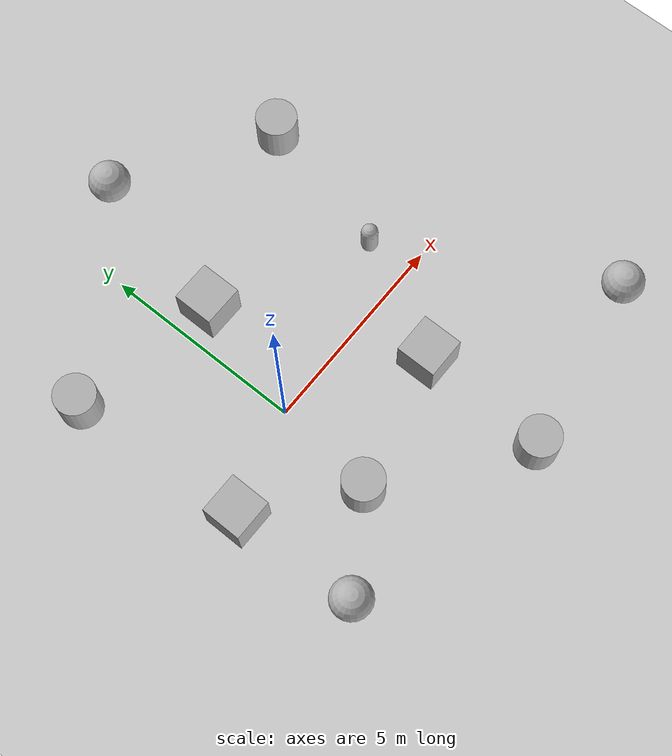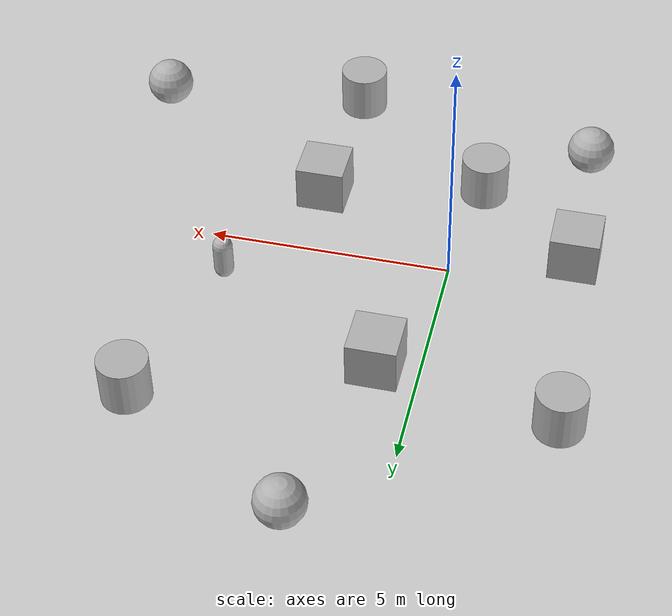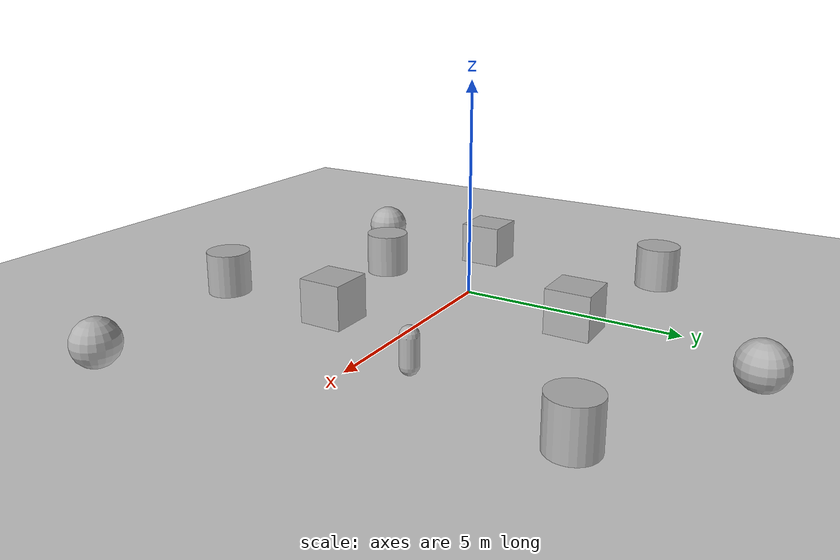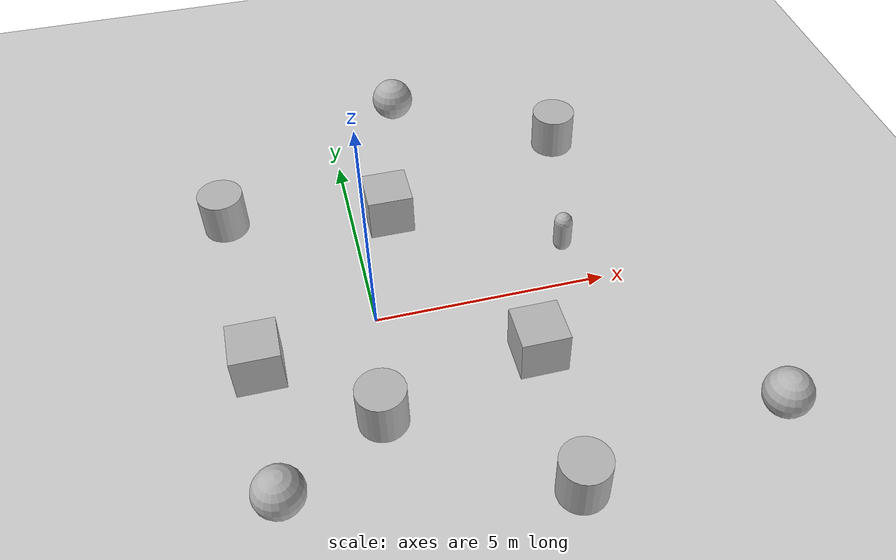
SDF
<sdf version='1.9'>
  <world name='empty'>
    <physics name='1ms' type='ignored'>
      <max_step_size>0.001</max_step_size>
      <real_time_factor>1</real_time_factor>
      <real_time_update_rate>1000</real_time_update_rate>
    </physics>
    <plugin name='gz::sim::systems::Physics' filename='ignition-gazebo-physics-system'/>
    <plugin name='gz::sim::systems::UserCommands' filename='ignition-gazebo-user-commands-system'/>
    <plugin name='gz::sim::systems::SceneBroadcaster' filename='ignition-gazebo-scene-broadcaster-system'/>
    <plugin name='gz::sim::systems::Contact' filename='ignition-gazebo-contact-system'/>
    <plugin name='gz::sim::systems::Sensors' filename='ignition-gazebo-sensors-system'>
      <render_engine>ogre2</render_engine>
    </plugin>
    <gravity>0 0 -9.8</gravity>
    <magnetic_field>6e-06 2.3e-05 -4.2e-05</magnetic_field>
    <atmosphere type='adiabatic'/>
    <scene>
      <ambient>0.4 0.4 0.4 1</ambient>
      <background>0.7 0.7 0.7 1</background>
      <shadows>true</shadows>
    </scene>
    <model name='ground_plane'>
      <static>true</static>
      <link name='link'>
        <collision name="collision">
          <geometry>
            <plane>
              <normal>0 0 1</normal>
              <size>100 100</size>
            </plane>
          </geometry>
          <surface>
            <friction>
              <ode>
                <mu>50</mu>
              </ode>
            </friction>
          </surface>
        </collision>
        <visual name='visual'>
          <geometry>
            <plane>
              <normal>0 0 1</normal>
              <size>100 100</size>
            </plane>
          </geometry>
          <material>
            <ambient>0.8 0.8 0.8 1</ambient>
            <diffuse>0.8 0.8 0.8 1</diffuse>
            <specular>0.8 0.8 0.8 1</specular>
          </material>
        </visual>
        <pose>0 0 0 0 -0 0</pose>
        <inertial>
          <pose>0 0 0 0 -0 0</pose>
          <mass>1</mass>
          <inertia>
            <ixx>1</ixx>
            <ixy>0</ixy>
            <ixz>0</ixz>
            <iyy>1</iyy>
            <iyz>0</iyz>
            <izz>1</izz>
          </inertia>
        </inertial>
        <enable_wind>false</enable_wind>
      </link>
      <pose>0 0 0 0 -0 0</pose>
      <self_collide>false</self_collide>
    </model>
    <model name='box'>
      <pose>0.845524 2.9587 0.5 0 0 -0</pose>
      <link name='box_link'>
        <inertial>
          <inertia>
            <ixx>0.16666</ixx>
            <ixy>0</ixy>
            <ixz>0</ixz>
            <iyy>0.16666</iyy>
            <iyz>0</iyz>
            <izz>0.16666</izz>
          </inertia>
          <mass>1</mass>
          <pose>0 0 0 0 -0 0</pose>
        </inertial>
        <collision name='box_collision'>
          <geometry>
            <box>
              <size>1 1 1</size>
            </box>
          </geometry>
          <surface>
            <friction>
              <ode/>
            </friction>
            <bounce/>
            <contact/>
          </surface>
        </collision>
        <visual name='box_visual'>
          <geometry>
            <box>
              <size>1 1 1</size>
            </box>
          </geometry>
          <material>
            <ambient>0.3 0.3 0.3 1</ambient>
            <diffuse>0.7 0.7 0.7 1</diffuse>
            <specular>1 1 1 1</specular>
          </material>
        </visual>
        <pose>0 0 0 0 -0 0</pose>
        <enable_wind>false</enable_wind>
      </link>
      <static>false</static>
      <self_collide>false</self_collide>
    </model>
    <model name='sphere'>
      <pose>-2.39579 -3.8611 0.5 0 -0 0</pose>
      <link name='sphere_link'>
        <inertial>
          <inertia>
            <ixx>0.10000000000000001</ixx>
            <ixy>0</ixy>
            <ixz>0</ixz>
            <iyy>0.10000000000000001</iyy>
            <iyz>0</iyz>
            <izz>0.10000000000000001</izz>
          </inertia>
          <mass>1</mass>
          <pose>0 0 0 0 -0 0</pose>
        </inertial>
        <collision name='sphere_collision'>
          <geometry>
            <sphere>
              <radius>0.5</radius>
            </sphere>
          </geometry>
          <surface>
            <friction>
              <ode/>
            </friction>
            <bounce/>
            <contact/>
          </surface>
        </collision>
        <visual name='sphere_visual'>
          <geometry>
            <sphere>
              <radius>0.5</radius>
            </sphere>
          </geometry>
          <material>
            <ambient>0.3 0.3 0.3 1</ambient>
            <diffuse>0.7 0.7 0.7 1</diffuse>
            <specular>1 1 1 1</specular>
          </material>
        </visual>
        <pose>0 0 0 0 -0 0</pose>
        <enable_wind>false</enable_wind>
      </link>
      <static>false</static>
      <self_collide>false</self_collide>
    </model>
    <model name='box_0'>
      <pose>-2.48527 -0.748911 0.5 -0 0 -0</pose>
      <link name='box_link'>
        <inertial>
          <inertia>
            <ixx>0.16666</ixx>
            <ixy>0</ixy>
            <ixz>0</ixz>
            <iyy>0.16666</iyy>
            <iyz>0</iyz>
            <izz>0.16666</izz>
          </inertia>
          <mass>1</mass>
          <pose>0 0 0 0 -0 0</pose>
        </inertial>
        <collision name='box_collision'>
          <geometry>
            <box>
              <size>1 1 1</size>
            </box>
          </geometry>
          <surface>
            <friction>
              <ode/>
            </friction>
            <bounce/>
            <contact/>
          </surface>
        </collision>
        <visual name='box_visual'>
          <geometry>
            <box>
              <size>1 1 1</size>
            </box>
          </geometry>
          <material>
            <ambient>0.3 0.3 0.3 1</ambient>
            <diffuse>0.7 0.7 0.7 1</diffuse>
            <specular>1 1 1 1</specular>
            <emissive>0 0 1 1</emissive>
          </material>
        </visual>
        <pose>0 0 0 0 -0 0</pose>
        <enable_wind>false</enable_wind>
      </link>
      <static>false</static>
      <self_collide>false</self_collide>
    </model>
    <model name='sphere_0'>
      <pose>7.21601 -4.16 0.5 0 -0 0</pose>
      <link name='sphere_link'>
        <inertial>
          <inertia>
            <ixx>0.10000000000000001</ixx>
            <ixy>0</ixy>
            <ixz>0</ixz>
            <iyy>0.10000000000000001</iyy>
            <iyz>0</iyz>
            <izz>0.10000000000000001</izz>
          </inertia>
          <mass>1</mass>
          <pose>0 0 0 0 -0 0</pose>
        </inertial>
        <collision name='sphere_collision'>
          <geometry>
            <sphere>
              <radius>0.5</radius>
            </sphere>
          </geometry>
          <surface>
            <friction>
              <ode/>
            </friction>
            <bounce/>
            <contact/>
          </surface>
        </collision>
        <visual name='sphere_visual'>
          <geometry>
            <sphere>
              <radius>0.5</radius>
            </sphere>
          </geometry>
          <material>
            <ambient>0.3 0.3 0.3 1</ambient>
            <diffuse>0.7 0.7 0.7 1</diffuse>
            <specular>1 1 1 1</specular>
            <emissive>0 0.8 0 1</emissive>
           </material>
        </visual>
        <pose>0 0 0 0 -0 0</pose>
        <enable_wind>false</enable_wind>
      </link>
      <static>false</static>
      <self_collide>false</self_collide>
    </model>
    <model name='cylinder'>
      <pose>2.87591 -4.90116 0.499999 0 -0 0</pose>
      <link name='cylinder_link'>
        <inertial>
          <inertia>
            <ixx>0.14580000000000001</ixx>
            <ixy>0</ixy>
            <ixz>0</ixz>
            <iyy>0.14580000000000001</iyy>
            <iyz>0</iyz>
            <izz>0.125</izz>
          </inertia>
          <mass>1</mass>
          <pose>0 0 0 0 -0 0</pose>
        </inertial>
        <collision name='cylinder_collision'>
          <geometry>
            <cylinder>
              <radius>0.5</radius>
              <length>1</length>
            </cylinder>
          </geometry>
          <surface>
            <friction>
              <ode/>
            </friction>
            <bounce/>
            <contact/>
          </surface>
        </collision>
        <visual name='cylinder_visual'>
          <geometry>
            <cylinder>
              <radius>0.5</radius>
              <length>1</length>
            </cylinder>
          </geometry>
          <material>
            <ambient>0.3 0.3 0.3 1</ambient>
            <diffuse>0.7 0.7 0.7 1</diffuse>
            <specular>1 1 1 1</specular>
            <emissive>0.8 0 0 1</emissive>
          </material>
        </visual>
        <pose>0 0 0 0 -0 0</pose>
        <enable_wind>false</enable_wind>
      </link>
      <static>false</static>
      <self_collide>false</self_collide>
    </model>
    <model name='cylinder_0'>
      <pose>-2.7966 3.65125 0.499999 -0 0 -0</pose>
      <link name='cylinder_link'>
        <inertial>
          <inertia>
            <ixx>0.14580000000000001</ixx>
            <ixy>0</ixy>
            <ixz>0</ixz>
            <iyy>0.14580000000000001</iyy>
            <iyz>0</iyz>
            <izz>0.125</izz>
          </inertia>
          <mass>1</mass>
          <pose>0 0 0 0 -0 0</pose>
        </inertial>
        <collision name='cylinder_collision'>
          <geometry>
            <cylinder>
              <radius>0.5</radius>
              <length>1</length>
            </cylinder>
          </geometry>
          <surface>
            <friction>
              <ode/>
            </friction>
            <bounce/>
            <contact/>
          </surface>
        </collision>
        <visual name='cylinder_visual'>
          <geometry>
            <cylinder>
              <radius>0.5</radius>
              <length>1</length>
            </cylinder>
          </geometry>
          <material>
            <ambient>0.3 0.3 0.3 1</ambient>
            <diffuse>0.7 0.7 0.7 1</diffuse>
            <specular>1 1 1 1</specular>
            <emissive>0.8 0.5 0 1</emissive>
          </material>
        </visual>
        <pose>0 0 0 0 -0 0</pose>
        <enable_wind>false</enable_wind>
      </link>
      <static>false</static>
      <self_collide>false</self_collide>
    </model>
    <model name='capsule'>
      <pose>4.42175 1.09671 0.5 0 -0 0</pose>
      <link name='capsule_link'>
        <inertial>
          <inertia>
            <ixx>0.074153999999999998</ixx>
            <ixy>0</ixy>
            <ixz>0</ixz>
            <iyy>0.074153999999999998</iyy>
            <iyz>0</iyz>
            <izz>0.018769000000000001</izz>
          </inertia>
          <mass>1</mass>
          <pose>0 0 0 0 -0 0</pose>
        </inertial>
        <collision name='capsule_collision'>
          <geometry>
            <capsule>
              <radius>0.20000000000000001</radius>
              <length>0.59999999999999998</length>
            </capsule>
          </geometry>
          <surface>
            <friction>
              <ode/>
            </friction>
            <bounce/>
            <contact/>
          </surface>
        </collision>
        <visual name='capsule_visual'>
          <geometry>
            <capsule>
              <radius>0.20000000000000001</radius>
              <length>0.59999999999999998</length>
            </capsule>
          </geometry>
          <material>
            <ambient>0.3 0.3 0.3 1</ambient>
            <diffuse>0.7 0.7 0.7 1</diffuse>
            <specular>1 1 1 1</specular>
            <emissive>0.8 0 0.6 1</emissive>
          </material>
        </visual>
        <pose>0 0 0 0 -0 0</pose>
        <enable_wind>false</enable_wind>
      </link>
      <static>false</static>
      <self_collide>false</self_collide>
    </model>
    <model name='cylinder_1'>
      <pose>5.30263 4.64674 0.499999 -0 0 -0</pose>
      <link name='cylinder_link'>
        <inertial>
          <inertia>
            <ixx>0.14580000000000001</ixx>
            <ixy>0</ixy>
            <ixz>0</ixz>
            <iyy>0.14580000000000001</iyy>
            <iyz>0</iyz>
            <izz>0.125</izz>
          </inertia>
          <mass>1</mass>
          <pose>0 0 0 0 -0 0</pose>
        </inertial>
        <collision name='cylinder_collision'>
          <geometry>
            <cylinder>
              <radius>0.5</radius>
              <length>1</length>
            </cylinder>
          </geometry>
          <surface>
            <friction>
              <ode/>
            </friction>
            <bounce/>
            <contact/>
          </surface>
        </collision>
        <visual name='cylinder_visual'>
          <geometry>
            <cylinder>
              <radius>0.5</radius>
              <length>1</length>
            </cylinder>
          </geometry>
          <material>
            <ambient>0.3 0.3 0.3 1</ambient>
            <diffuse>0.7 0.7 0.7 1</diffuse>
            <specular>1 1 1 1</specular>
            <emissive>0.3 0 0.8 1</emissive>
          </material>
        </visual>
        <pose>0 0 0 0 -0 0</pose>
        <enable_wind>false</enable_wind>
      </link>
      <static>false</static>
      <self_collide>false</self_collide>
    </model>
    <model name='sphere_1'>
      <pose>1.69795 6.81337 0.5 0 -0 0</pose>
      <link name='sphere_link'>
        <inertial>
          <inertia>
            <ixx>0.10000000000000001</ixx>
            <ixy>0</ixy>
            <ixz>0</ixz>
            <iyy>0.10000000000000001</iyy>
            <iyz>0</iyz>
            <izz>0.10000000000000001</izz>
          </inertia>
          <mass>1</mass>
          <pose>0 0 0 0 -0 0</pose>
        </inertial>
        <collision name='sphere_collision'>
          <geometry>
            <sphere>
              <radius>0.5</radius>
            </sphere>
          </geometry>
          <surface>
            <friction>
              <ode/>
            </friction>
            <bounce/>
            <contact/>
          </surface>
        </collision>
        <visual name='sphere_visual'>
          <geometry>
            <sphere>
              <radius>0.5</radius>
            </sphere>
          </geometry>
          <material>
            <ambient>0.3 0.3 0.3 1</ambient>
            <diffuse>0.7 0.7 0.7 1</diffuse>
            <specular>1 1 1 1</specular>
            <emissive>0.4 0.4 0 1</emissive>
          </material>
        </visual>
        <pose>0 0 0 0 -0 0</pose>
        <enable_wind>false</enable_wind>
      </link>
      <static>false</static>
      <self_collide>false</self_collide>
    </model>
    <model name='box_1'>
      <pose>3.00874 -1.72587 0.5 0 0 -0</pose>
      <link name='box_link'>
        <inertial>
          <inertia>
            <ixx>0.16666</ixx>
            <ixy>0</ixy>
            <ixz>0</ixz>
            <iyy>0.16666</iyy>
            <iyz>0</iyz>
            <izz>0.16666</izz>
          </inertia>
          <mass>1</mass>
          <pose>0 0 0 0 -0 0</pose>
        </inertial>
        <collision name='box_collision'>
          <geometry>
            <box>
              <size>1 1 1</size>
            </box>
          </geometry>
          <surface>
            <friction>
              <ode/>
            </friction>
            <bounce/>
            <contact/>
          </surface>
        </collision>
        <visual name='box_visual'>
          <geometry>
            <box>
              <size>1 1 1</size>
            </box>
          </geometry>
          <material>
            <ambient>0.3 0.3 0.3 1</ambient>
            <diffuse>0.7 0.7 0.7 1</diffuse>
            <specular>1 1 1 1</specular>
            <emissive>0.3 0.5 0.7 1</emissive>
          </material>
        </visual>
        <pose>0 0 0 0 -0 0</pose>
        <enable_wind>false</enable_wind>
      </link>
      <static>false</static>
      <self_collide>false</self_collide>
    </model>
    <model name='cylinder_2'>
      <pose>-0.304523 -2.50737 0.499999 0 -0 -0</pose>
      <link name='cylinder_link'>
        <inertial>
          <inertia>
            <ixx>0.14580000000000001</ixx>
            <ixy>0</ixy>
            <ixz>0</ixz>
            <iyy>0.14580000000000001</iyy>
            <iyz>0</iyz>
            <izz>0.125</izz>
          </inertia>
          <mass>1</mass>
          <pose>0 0 0 0 -0 0</pose>
        </inertial>
        <collision name='cylinder_collision'>
          <geometry>
            <cylinder>
              <radius>0.5</radius>
              <length>1</length>
            </cylinder>
          </geometry>
          <surface>
            <friction>
              <ode/>
            </friction>
            <bounce/>
            <contact/>
          </surface>
        </collision>
        <visual name='cylinder_visual'>
          <geometry>
            <cylinder>
              <radius>0.5</radius>
              <length>1</length>
            </cylinder>
          </geometry>
          <material>
            <ambient>0.3 0.3 0.3 1</ambient>
            <diffuse>0.7 0.7 0.7 1</diffuse>
            <specular>1 1 1 1</specular>
            <emissive>0.2 0 0.3 0.4</emissive>
          </material>
        </visual>
        <pose>0 0 0 0 -0 0</pose>
        <enable_wind>false</enable_wind>
      </link>
      <static>false</static>
      <self_collide>false</self_collide>
    </model>
    <light name='sun' type='directional'>
      <pose>0 0 10 0 -0 0</pose>
      <cast_shadows>true</cast_shadows>
      <intensity>1</intensity>
      <direction>-0.5 0.1 -0.9</direction>
      <diffuse>0.8 0.8 0.8 1</diffuse>
      <specular>0.2 0.2 0.2 1</specular>
      <attenuation>
        <range>1000</range>
        <linear>0.01</linear>
        <constant>0.90000000000000002</constant>
        <quadratic>0.001</quadratic>
      </attenuation>
      <spot>
        <inner_angle>0</inner_angle>
        <outer_angle>0</outer_angle>
        <falloff>0</falloff>
      </spot>
    </light>
  </world>
</sdf>
